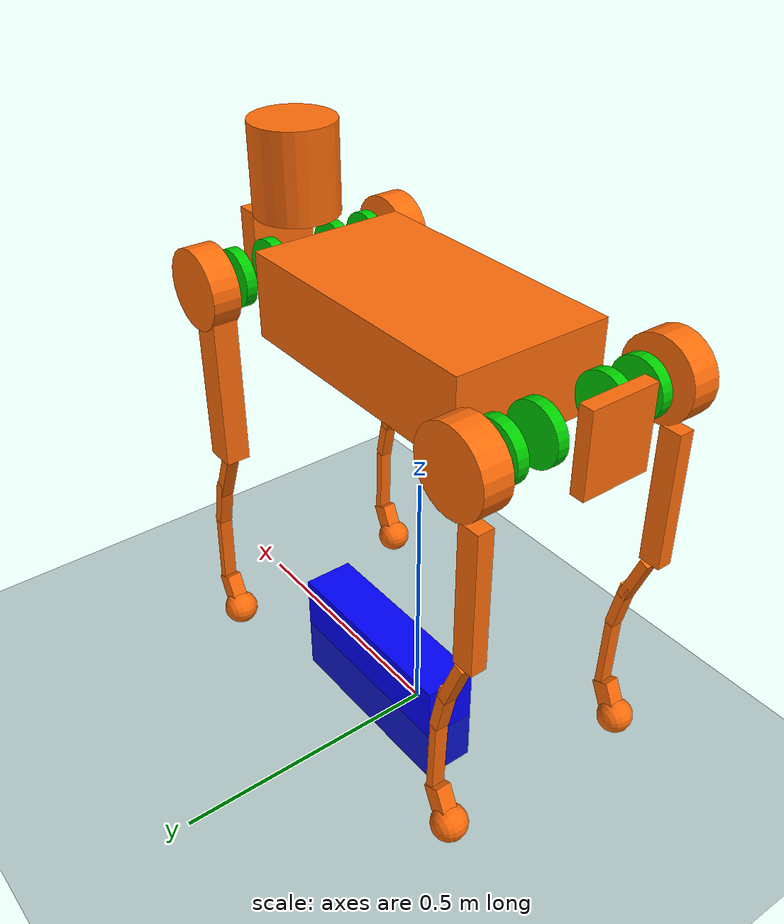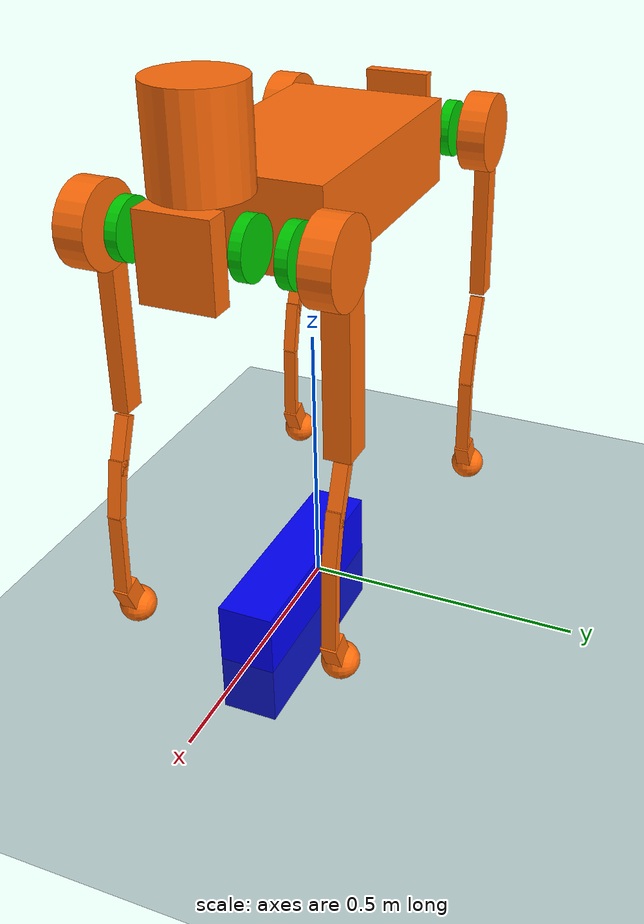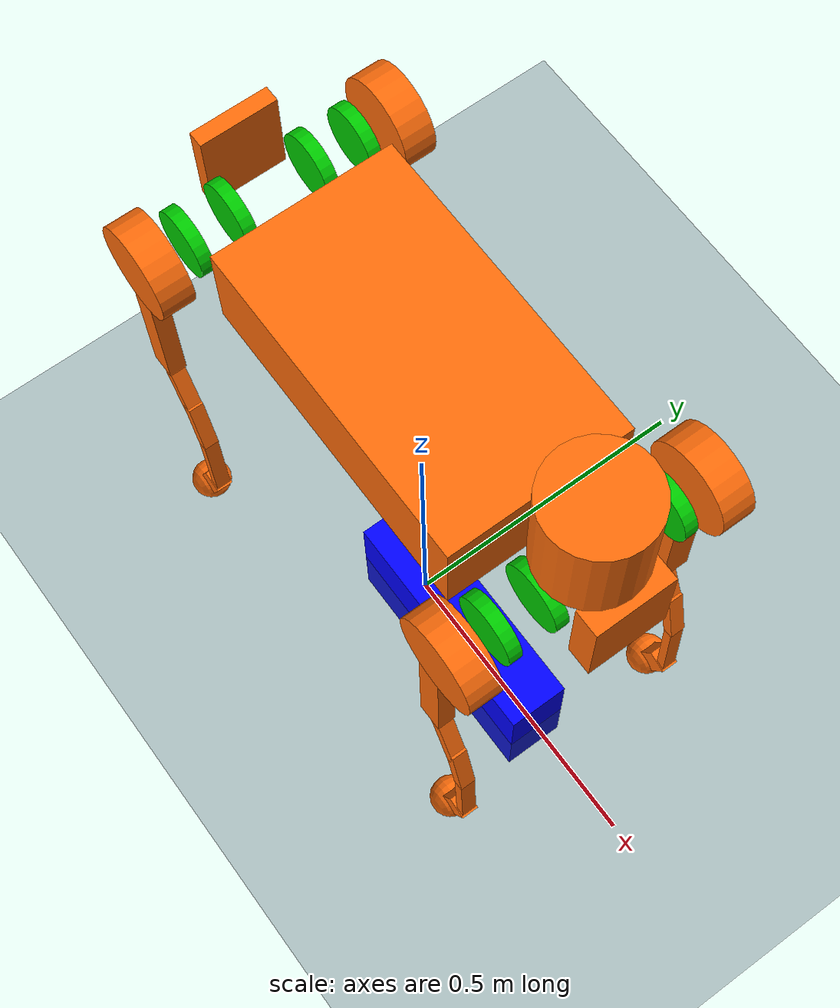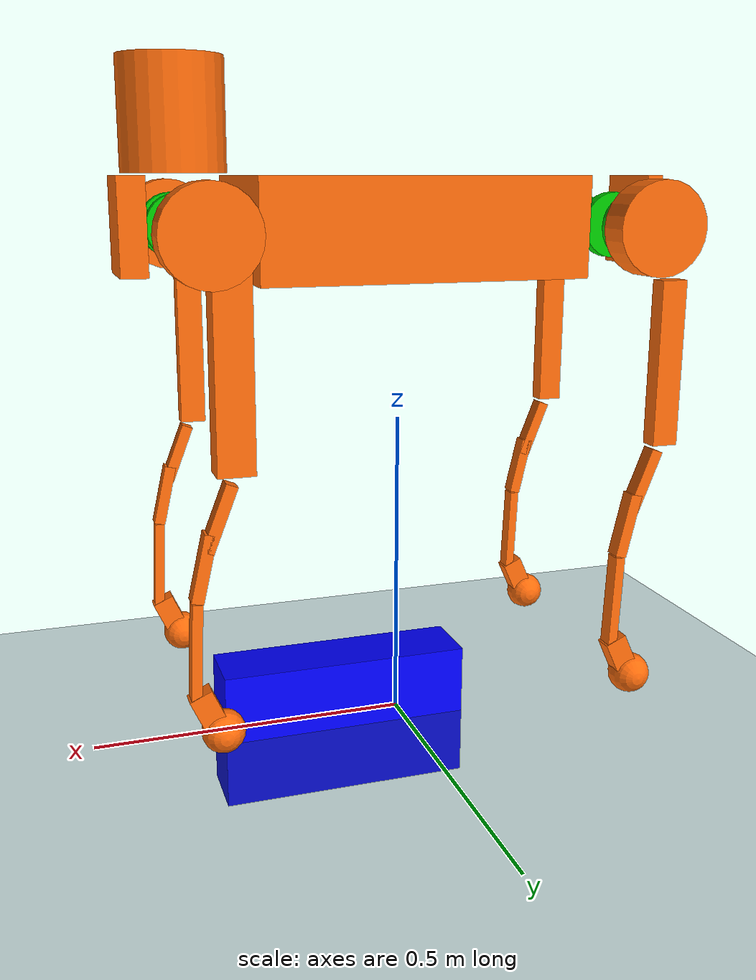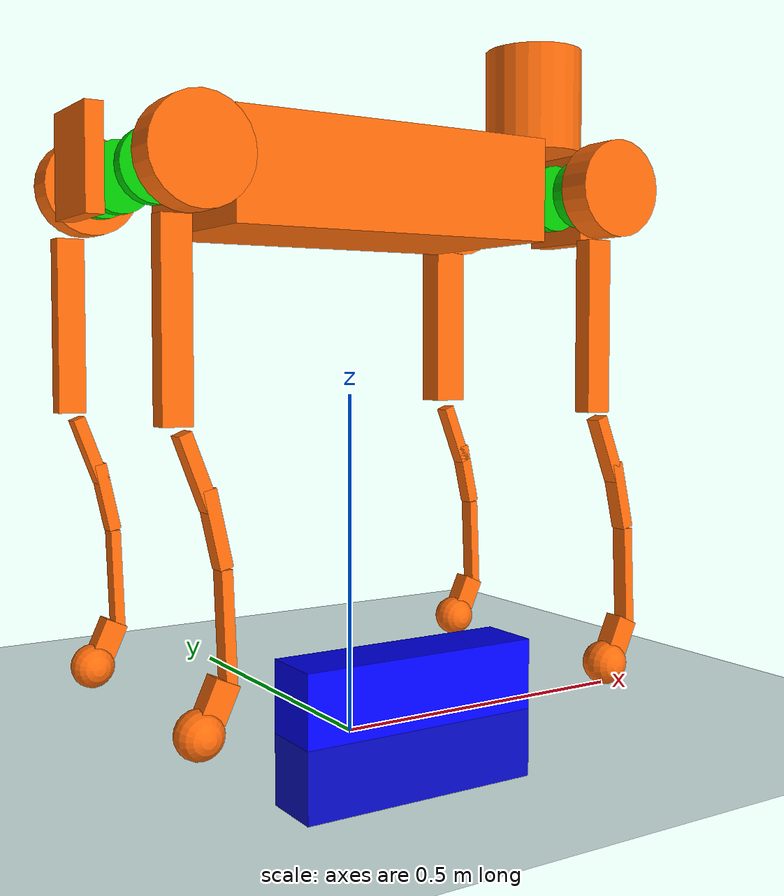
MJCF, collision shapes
<mujoco model="b2_description">
  <compiler angle="radian" meshdir="../assets/"/>

  <asset>
    <texture type="skybox" builtin="gradient" rgb1="0.3 0.5 0.7" rgb2="0 0 0" width="512" height="512" />
    <texture name="texplane" type="2d" builtin="checker" rgb1=".2 .3 .4" rgb2=".1 0.15 0.2" width="512" height="512" mark="cross" markrgb=".8 .8 .8" />
    <material name="matplane" reflectance="0.0" texture="texplane" texrepeat="1 1" texuniform="true" />

    <mesh name="base_link" file="base_link.obj"/>
    <mesh name="FR_hip" file="FR_hip.obj"/>
    <mesh name="FR_thigh" file="FR_thigh.obj"/>
    <mesh name="FR_calf" file="FR_calf.obj"/>
    <mesh name="FL_hip" file="FL_hip.obj"/>
    <mesh name="FL_thigh" file="FL_thigh.obj"/>
    <mesh name="FL_calf" file="FL_calf.obj"/>
    <mesh name="RR_hip" file="RR_hip.obj"/>
    <mesh name="RR_thigh" file="RR_thigh.obj"/>
    <mesh name="RR_calf" file="RR_calf.obj"/>
    <mesh name="RL_hip" file="RL_hip.obj"/>
    <mesh name="RL_thigh" file="RL_thigh.obj"/>
    <mesh name="RL_calf" file="RL_calf.obj"/>
  </asset>

  <worldbody>
    <light directional="true" diffuse=".4 .4 .4" specular="0.1 0.1 0.1" pos="0 0 5.0" dir="0 0 -1" castshadow="false" />
    <light directional="true" diffuse=".6 .6 .6" specular="0.2 0.2 0.2" pos="0 0 4" dir="0 0 -1" />
    <geom type="box" size="0.20 0.05 0.11" pos="0.1 0 0" rgba="0 0 1 0.3"/>
    <geom size="0.0005 0.0005 0.0005" type="box" contype="0" conaffinity="0" group="1" density="0"/>
    <geom name="floor" pos="0 0 0" size="200 200 1" type="plane" material="matplane" margin="0.001" condim="3" friction="1 0.005 0.0001" />
    <body name="trunk" pos="0 0 0.8">
      <site name="imu_sensor_site" pos="0 -0.02341 0.04927" />
      <inertial pos="0.000458 0.005261 0.000665" mass="35.86" fullinertia="0.27466 1.0618 1.1825 -0.000622 0.00315 -0.00139"/>
      <joint name="floating_base" type="free" limited="false" actuatorfrclimited="false"/>
      <geom contype="0" conaffinity="0" group="1" density="0" type="mesh" mesh="base_link" rgba="0.7 0.7 0.7 1"/>
      <geom group="2" rgba="1 0.423529 0.0392157 0.5" type="box" size="0.25 0.14 0.075"/>

      <body name="FR_hip" pos="0.3285 -0.072 0">
        <inertial pos="-0.009305 0.010228 0.000264" mass="2.673" fullinertia="0.0026431 0.0046728 0.0034208 -0.00019234 -6.76E-06 7.16E-06"/>
        <joint name="RF_HAA" pos="0 0 0" axis="1 0 0" range="-0.87 0.87" actuatorfrcrange="-200 200"/>
        <geom contype="0" conaffinity="0" group="1" density="0" type="mesh" mesh="FR_hip" rgba="0.7 0.7 0.7 1"/>
        <geom group="2" rgba="1 0.423529 0.0392157 0.5" pos="0 -0.12 0" euler="1.5707963267948966 0 0" type="cylinder" size="0.07 0.025"/>
        <body name="FR_thigh" pos="0 -0.11973 0">
          <inertial pos="-0.006279 0.032049 -0.057835" mass="4.536" fullinertia="0.06229908 0.06139927 0.008199745 -0.000877808 -0.003647464 -0.008353671"/>
          <joint name="RF_HFE" pos="0 0 0" axis="0 1 0" range="-0.94 4.69" actuatorfrcrange="-200 200"/>
          <geom contype="0" conaffinity="0" group="1" density="0" type="mesh" mesh="FR_thigh" rgba="0.7 0.7 0.7 1"/>
          <geom group="2" rgba="1 0.423529 0.0392157 0.5" pos="-0.03 0 -0.2" euler="0 1.57 0" type="box" size="0.125 0.014 0.02"/>
          <body name="FR_calf" pos="0 8.6986E-05 -0.35">
            <inertial pos="0.012422 0 -0.12499" mass="0.404" fullinertia="0.01143 0.011534 0.000331 0 0.000643 0"/>
            <joint name="RF_KFE" pos="0 0 0" axis="0 1 0" range="-2.82 -0.43" actuatorfrcrange="-320 320"/>
            <geom contype="0" conaffinity="0" group="1" density="0" type="mesh" mesh="FR_calf" rgba="0.7 0.7 0.7 1"/>
            <geom group="2" rgba="1 0.423529 0.0392157 0.5" pos="-0.002 0 -0.03" euler="0 1.2 0" type="box" size="0.05 0.01225 0.009"/>
            <geom group="2" rgba="1 0.423529 0.0392157 0.5" pos="0.022 0 -0.1" euler="0 1.35 0" type="box" size="0.05 0.01225 0.009"/>
            <geom group="2" rgba="1 0.423529 0.0392157 0.5" pos="0.036 0 -0.225" euler="0 1.53 0" type="box" size="0.075 0.01225 0.0075"/>
            <geom group="2" rgba="1 0.423529 0.0392157 0.5" pos="0.023 0 -0.31" euler="0 2 0" type="box" size="0.025 0.014 0.0175"/>
            <body name="RF_FOOT" pos="0 0 -0.35">
              <inertial pos="-0.006511 0 -0.010144" mass="0.126" fullinertia="3.8E-05 4.1E-05 4.2E-05 0 1.1E-05 0"/>
              <geom contype="0" conaffinity="0" group="1" density="0" type="sphere" size="0.03" rgba="0 0.8 0 1"/>
              <geom group="2" rgba="1 0.423529 0.0392157 0.5" euler="1.57 0 0" type="sphere" size="0.032" name="RF_FOOT_geom" friction="0.4 0.005 0.0001"/>
            </body>
          </body>
          <body name="FR_calf_rotor" pos="0 0.05788 0">
            <inertial pos="0.0 0.0 0.0" mass="0.2734" fullinertia="0.000144463 0.000144463 0.000263053 0.0 0.0 0.0"/>
            <geom contype="0" conaffinity="0" group="1" density="0" euler="1.5707963267948966 0 0" type="cylinder" size="0.05 0.01" rgba="0 0.8 0 1"/>
            <geom group="2" rgba="1 0.423529 0.0392157 0.5" euler="1.5707963267948966 0 0" type="cylinder" size="0.05 0.01"/>
          </body>
        </body>
        <body name="FR_thigh_rotor" pos="0 0.00798 0">
          <inertial pos="0.0 0.0 0.0" mass="0.2734" fullinertia="0.000144463 0.000144463 0.000263053 0.0 0.0 0.0"/>
          <geom contype="0" conaffinity="0" group="1" density="0" euler="1.5707963267948966 0 0" type="cylinder" size="0.05 0.01" rgba="0 0.8 0 1"/>
          <geom group="2" rgba="1 0.423529 0.0392157 0.5" euler="1.5707963267948966 0 0" type="cylinder" size="0.05 0.01"/>
        </body>
      </body>

      <body name="FL_hip" pos="0.3285 0.072 0">
        <inertial pos="-0.003841 -0.009068 0" mass="2.673" fullinertia="0.0033188 0.0048743 0.0037087 7.16E-05 -3.77E-07 4E-09"/>
        <joint name="LF_HAA" pos="0 0 0" axis="1 0 0" range="-0.87 0.87" actuatorfrcrange="-200 200"/>
        <geom contype="0" conaffinity="0" group="1" density="0" type="mesh" mesh="FL_hip" rgba="0.7 0.7 0.7 1"/>
        <geom group="2" rgba="1 0.423529 0.0392157 0.5" pos="0 0.12 0" euler="1.5707963267948966 0 0" type="cylinder" size="0.07 0.025"/>
        <body name="FL_thigh" pos="0 0.11973 0">
          <inertial pos="-0.006279 -0.032049 -0.057835" mass="4.536" fullinertia="0.062299 0.061399 0.0081997 0.00087781 -0.0036475 0.0083537"/>
          <joint name="LF_HFE" pos="0 0 0" axis="0 1 0" range="-0.94 4.69" actuatorfrcrange="-200 200"/>
          <geom contype="0" conaffinity="0" group="1" density="0" type="mesh" mesh="FL_thigh" rgba="0.7 0.7 0.7 1"/>
          <geom group="2" rgba="1 0.423529 0.0392157 0.5" pos="-0.025 0 -0.16" euler="0 1.57 0" type="box" size="0.16 0.02225 0.027"/>
          <body name="FL_calf" pos="0 -8.6984E-05 -0.35">
            <inertial pos="0.012422 0 -0.12499" mass="0.404" fullinertia="0.01143 0.011534 0.000331 0 0.000643 0"/>
            <joint name="LF_KFE" pos="0 0 0" axis="0 1 0" range="-2.82 -0.43" actuatorfrcrange="-320 320"/>
            <geom contype="0" conaffinity="0" group="1" density="0" type="mesh" mesh="FL_calf" rgba="0.7 0.7 0.7 1"/>
            <geom group="2" rgba="1 0.423529 0.0392157 0.5" pos="-0.002 0 -0.03" euler="0 1.2 0" type="box" size="0.05 0.01225 0.009"/>
            <geom group="2" rgba="1 0.423529 0.0392157 0.5" pos="0.022 0 -0.1" euler="0 1.35 0" type="box" size="0.05 0.01225 0.009"/>
            <geom group="2" rgba="1 0.423529 0.0392157 0.5" pos="0.036 0 -0.225" euler="0 1.53 0" type="box" size="0.075 0.01225 0.0075"/>
            <geom group="2" rgba="1 0.423529 0.0392157 0.5" pos="0.023 0 -0.31" euler="0 2 0" type="box" size="0.025 0.014 0.0175"/>
            <body name="LF_FOOT" pos="0 0 -0.35">
              <inertial pos="-0.006511 0 -0.010144" mass="0.126" fullinertia="3.8E-05 4.1E-05 4.2E-05 0 1.1E-05 0"/>
              <geom contype="0" conaffinity="0" group="1" density="0" type="sphere" size="0.03" rgba="0 0.8 0 1"/>
              <geom group="2" rgba="1 0.423529 0.0392157 0.5" euler="1.57 0 0" type="sphere" size="0.032" name="LF_FOOT_geom" friction="0.4 0.005 0.0001"/>
            </body>
          </body>
          <body name="FL_calf_rotor" pos="0 -0.05788 0">
            <inertial pos="0.0 0.0 0.0" mass="0.2734" fullinertia="0.000144463 0.000144463 0.000263053 0.0 0.0 0.0"/>
            <geom contype="0" conaffinity="0" group="1" density="0" euler="1.5707963267948966 0 0" type="cylinder" size="0.05 0.01" rgba="0 0.8 0 1"/>
            <geom group="2" rgba="1 0.423529 0.0392157 0.5" euler="1.5707963267948966 0 0" type="cylinder" size="0.05 0.01"/>
          </body>
        </body>
        <body name="FL_thigh_rotor" pos="0 -0.00798 0">
          <inertial pos="0.0 0.0 0.0" mass="0.2734" fullinertia="0.000144463 0.000144463 0.000263053 0.0 0.0 0.0"/>
          <geom contype="0" conaffinity="0" group="1" density="0" euler="1.5707963267948966 0 0" type="cylinder" size="0.05 0.01" rgba="0 0.8 0 1"/>
          <geom group="2" rgba="1 0.423529 0.0392157 0.5" euler="1.5707963267948966 0 0" type="cylinder" size="0.05 0.01"/>
        </body>
      </body>

      <body name="RR_hip" pos="-0.3285 -0.072 0">
        <inertial pos="0.003841 0.009068 0" mass="2.673" fullinertia="0.0033188 0.0048743 0.0037087 7.16E-05 3.77E-07 -4E-09"/>
        <joint name="RH_HAA" pos="0 0 0" axis="1 0 0" range="-0.87 0.87" actuatorfrcrange="-200 200"/>
        <geom contype="0" conaffinity="0" group="1" density="0" type="mesh" mesh="RR_hip" rgba="0.7 0.7 0.7 1"/>
        <geom group="2" rgba="1 0.423529 0.0392157 0.5" pos="0 -0.12 0" euler="1.5707963267948966 0 0" type="cylinder" size="0.07 0.025"/>
        <body name="RR_thigh" pos="0 -0.11973 0">
          <inertial pos="-0.006279 0.032049 -0.057835" mass="4.536" fullinertia="0.062299 0.061399 0.0081997 -0.00087781 -0.0036475 -0.0083537"/>
          <joint name="RH_HFE" pos="0 0 0" axis="0 1 0" range="-0.94 4.69" actuatorfrcrange="-200 200"/>
          <geom contype="0" conaffinity="0" group="1" density="0" type="mesh" mesh="RR_thigh" rgba="0.7 0.7 0.7 1"/>
          <geom group="2" rgba="1 0.423529 0.0392157 0.5" pos="-0.03 0 -0.2" euler="0 1.57 0" type="box" size="0.125 0.014 0.02"/>
          <body name="RR_calf" pos="0 8.6986E-05 -0.35">
            <inertial pos="0.012422 0 -0.12499" mass="0.404" fullinertia="0.01143 0.011534 0.000331 0 0.000643 0"/>
            <joint name="RH_KFE" pos="0 0 0" axis="0 1 0" range="-2.82 -0.43" actuatorfrcrange="-320 320"/>
            <geom contype="0" conaffinity="0" group="1" density="0" type="mesh" mesh="RR_calf" rgba="0.7 0.7 0.7 1"/>
            <geom group="2" rgba="1 0.423529 0.0392157 0.5" pos="-0.002 0 -0.03" euler="0 1.2 0" type="box" size="0.05 0.01225 0.009"/>
            <geom group="2" rgba="1 0.423529 0.0392157 0.5" pos="0.022 0 -0.1" euler="0 1.35 0" type="box" size="0.05 0.01225 0.009"/>
            <geom group="2" rgba="1 0.423529 0.0392157 0.5" pos="0.036 0 -0.225" euler="0 1.53 0" type="box" size="0.075 0.01225 0.0075"/>
            <geom group="2" rgba="1 0.423529 0.0392157 0.5" pos="0.023 0 -0.31" euler="0 2 0" type="box" size="0.025 0.014 0.0175"/>
            <body name="RH_FOOT" pos="0 -8.6984E-05 -0.35">
              <inertial pos="-0.006511 0 -0.010144" mass="0.126" fullinertia="3.8E-05 4.1E-05 4.2E-05 0 1.1E-05 0"/>
              <geom contype="0" conaffinity="0" group="1" density="0" type="sphere" size="0.03" rgba="0 0.8 0 1"/>
              <geom group="2" rgba="1 0.423529 0.0392157 0.5" euler="1.57 0 0" type="sphere" size="0.032" name="RH_FOOT_geom" friction="0.4 0.005 0.0001"/>
            </body>
          </body>
          <body name="RR_calf_rotor" pos="0 0.05788 0">
            <inertial pos="0.0 0.0 0.0" mass="0.2734" fullinertia="0.000144463 0.000144463 0.000263053 0.0 0.0 0.0"/>
            <geom contype="0" conaffinity="0" group="1" density="0" euler="1.5707963267948966 0 0" type="cylinder" size="0.05 0.01" rgba="0 0.8 0 1"/>
            <geom group="2" rgba="1 0.423529 0.0392157 0.5" euler="1.5707963267948966 0 0" type="cylinder" size="0.05 0.01"/>
          </body>
        </body>
        <body name="RR_thigh_rotor" pos="0 0.00798 0">
          <inertial pos="0.0 0.0 0.0" mass="0.2734" fullinertia="0.000144463 0.000144463 0.000263053 0.0 0.0 0.0"/>
          <geom contype="0" conaffinity="0" group="1" density="0" euler="1.5707963267948966 0 0" type="cylinder" size="0.05 0.01" rgba="0 0.8 0 1"/>
          <geom group="2" rgba="1 0.423529 0.0392157 0.5" euler="1.5707963267948966 0 0" type="cylinder" size="0.05 0.01"/>
        </body>
      </body>

      <body name="RL_hip" pos="-0.3285 0.072 0">
        <inertial pos="0.009305 -0.010228 0.000264" mass="2.673" fullinertia="0.0026431 0.0046728 0.0034208 -0.00019234 6.76E-06 -7.16E-06"/>
        <joint name="LH_HAA" pos="0 0 0" axis="1 0 0" range="-0.87 0.87" actuatorfrcrange="-200 200"/>
        <geom contype="0" conaffinity="0" group="1" density="0" type="mesh" mesh="RL_hip" rgba="0.7 0.7 0.7 1"/>
        <geom group="2" rgba="1 0.423529 0.0392157 0.5" pos="0 0.12 0" euler="1.5707963267948966 0 0" type="cylinder" size="0.07 0.025"/>
        <body name="RL_thigh" pos="0 0.11973 0">
          <inertial pos="-0.006279 -0.032049 -0.057835" mass="4.536" fullinertia="0.06229908 0.06139927 0.008199745 0.000877808 -0.003647464 0.008353671"/>
          <joint name="LH_HFE" pos="0 0 0" axis="0 1 0" range="-0.94 4.69" actuatorfrcrange="-200 200"/>
          <geom contype="0" conaffinity="0" group="1" density="0" type="mesh" mesh="RL_thigh" rgba="0.7 0.7 0.7 1"/>
          <geom group="2" rgba="1 0.423529 0.0392157 0.5" pos="-0.03 0 -0.2" euler="0 1.57 0" type="box" size="0.125 0.014 0.02"/>
          <body name="RL_calf" pos="0 -8.6984E-05 -0.35">
            <inertial pos="0.012422 0 -0.12499" mass="0.404" fullinertia="0.01143 0.011534 0.000331 0 0.000643 0"/>
            <joint name="LH_KFE" pos="0 0 0" axis="0 1 0" range="-2.82 -0.43" actuatorfrcrange="-320 320"/>
            <geom contype="0" conaffinity="0" group="1" density="0" type="mesh" mesh="RL_calf" rgba="0.7 0.7 0.7 1"/>
            <geom group="2" rgba="1 0.423529 0.0392157 0.5" pos="-0.002 0 -0.03" euler="0 1.2 0" type="box" size="0.05 0.01225 0.009"/>
            <geom group="2" rgba="1 0.423529 0.0392157 0.5" pos="0.022 0 -0.1" euler="0 1.35 0" type="box" size="0.05 0.01225 0.009"/>
            <geom group="2" rgba="1 0.423529 0.0392157 0.5" pos="0.036 0 -0.225" euler="0 1.53 0" type="box" size="0.075 0.01225 0.0075"/>
            <geom group="2" rgba="1 0.423529 0.0392157 0.5" pos="0.023 0 -0.31" euler="0 2 0" type="box" size="0.025 0.014 0.0175"/>
            <body name="LH_FOOT" pos="0 0 -0.35">
              <inertial pos="-0.006511 0 -0.010144" mass="0.126" fullinertia="3.8E-05 4.1E-05 4.2E-05 0 1.1E-05 0"/>
              <geom contype="0" conaffinity="0" group="1" density="0" type="sphere" size="0.03" rgba="0 0.8 0 1"/>
              <geom group="2" rgba="1 0.423529 0.0392157 0.5" euler="1.57 0 0" type="sphere" size="0.032" name="LH_FOOT_geom" friction="0.4 0.005 0.0001"/>
            </body>
          </body>
          <body name="RL_calf_rotor" pos="0 -0.05788 0">
            <inertial pos="0.0 0.0 0.0" mass="0.2734" fullinertia="0.000144463 0.000144463 0.000263053 0.0 0.0 0.0"/>
            <geom contype="0" conaffinity="0" group="1" density="0" euler="1.5707963267948966 0 0" type="cylinder" size="0.05 0.01" rgba="0 0.8 0 1"/>
            <geom group="2" rgba="1 0.423529 0.0392157 0.5" euler="1.5707963267948966 0 0" type="cylinder" size="0.05 0.01"/>
          </body>
        </body>
        <body name="RL_thigh_rotor" pos="0 -0.00798 0">
          <inertial pos="0.0 0.0 0.0" mass="0.2734" fullinertia="0.000144463 0.000144463 0.000263053 0.0 0.0 0.0"/>
          <geom contype="0" conaffinity="0" group="1" density="0" euler="1.5707963267948966 0 0" type="cylinder" size="0.05 0.01" rgba="0 0.8 0 1"/>
          <geom group="2" rgba="1 0.423529 0.0392157 0.5" euler="1.5707963267948966 0 0" type="cylinder" size="0.05 0.01"/>
        </body>
      </body>

      <body name="FL_hip_rotor" pos="0.20205 0.072 0">
        <inertial pos="0.0 0.0 0.0" mass="0.2734" fullinertia="0.000144463 0.000144463 0.000263053 0.0 0.0 0.0"/>
        <geom contype="0" conaffinity="0" group="1" density="0" euler="0 1.5707963267948966 0" type="cylinder" size="0.05 0.01" rgba="0 0.8 0 1"/>
        <geom group="2" rgba="1 0.423529 0.0392157 0.5" euler="0 1.5707963267948966 0" type="cylinder" size="0.05 0.01"/>
      </body>
      <body name="FR_hip_rotor" pos="0.20205 -0.072 0">
        <inertial pos="0.0 0.0 0.0" mass="0.2734" fullinertia="0.000144463 0.000144463 0.000263053 0.0 0.0 0.0"/>
        <geom contype="0" conaffinity="0" group="1" density="0" euler="0 1.5707963267948966 0" type="cylinder" size="0.05 0.01" rgba="0 0.8 0 1"/>
        <geom group="2" rgba="1 0.423529 0.0392157 0.5" euler="0 1.5707963267948966 0" type="cylinder" size="0.05 0.01"/>
      </body>
      <body name="RL_hip_rotor" pos="-0.20205 0.072 0">
        <inertial pos="0.0 0.0 0.0" mass="0.2734" fullinertia="0.000144463 0.000144463 0.000263053 0.0 0.0 0.0"/>
        <geom contype="0" conaffinity="0" group="1" density="0" euler="0 1.5707963267948966 0" type="cylinder" size="0.05 0.01" rgba="0 0.8 0 1"/>
        <geom group="2" rgba="1 0.423529 0.0392157 0.5" euler="0 1.5707963267948966 0" type="cylinder" size="0.05 0.01"/>
      </body>
      <body name="RR_hip_rotor" pos="-0.20205 -0.072 0">
        <inertial pos="0.0 0.0 0.0" mass="0.2734" fullinertia="0.000144463 0.000144463 0.000263053 0.0 0.0 0.0"/>
        <geom contype="0" conaffinity="0" group="1" density="0" euler="0 1.5707963267948966 0" type="cylinder" size="0.05 0.01" rgba="0 0.8 0 1"/>
        <geom group="2" rgba="1 0.423529 0.0392157 0.5" euler="0 1.5707963267948966 0" type="cylinder" size="0.05 0.01"/>
      </body>

      <body name="f_dc_link" pos="0.41251 0.024997 0.04765" euler="-2.3562 0 -1.5708">
        <inertial pos="3.47E-18 0 5.55E-17" mass="4.19E-15" diaginertia="1.68E-27 1.68E-27 1.68E-27"/>
      </body>
      <body name="f_oc_link" pos="0.39079 0 -0.013433" euler="-1.5708 0 -1.5708">
        <inertial pos="-3.39E-15 1.46E-16 -6.11E-16" mass="4.19E-15" diaginertia="1.68E-27 1.68E-27 1.68E-27"/>
      </body>
      <body name="head_Link">
        <inertial pos="0.33989 -0.000168 0.12029" mass="3.6885" fullinertia="0.026455 0.029221 0.010918 3.15E-05 0.00166 -3.27E-05"/>
        <geom group="2" rgba="1 0.423529 0.0392157 0.5" pos="0.41 0 0.005" type="box" size="0.02 0.06 0.07"/>
      </body>
      <body name="imu_link" pos="0 -0.02341 0.04927">
        <inertial pos="-2.02E-17 1.73E-17 -1.39E-17" mass="4.19E-15" diaginertia="1.68E-27 1.68E-27 1.68E-27"/>
      </body>
      <body name="lidar_link" pos="0.34218 0 0.17851">
        <inertial pos="0.34218 0 0.17851" mass="4.19E-15" diaginertia="1.68E-27 1.68E-27 1.68E-27"/>
        <geom group="2" rgba="1 0.423529 0.0392157 0.5" pos="0 0 -0.02" type="cylinder" size="0.076 0.08"/>
      </body>
      <body name="r_dc_link" pos="-0.4081 -0.025 0.024861" euler="-2.3557 0 1.5708">
        <inertial pos="-7.46E-16 -3.33E-16 -1.11E-15" mass="4.19E-15" diaginertia="1.68E-27 1.68E-27 1.68E-27"/>
      </body>
      <body name="r_oc_link" pos="-0.38451 0 -0.023249" euler="-1.5708 0 1.5708">
        <inertial pos="-0.39143 1.52E-07 -0.011961" mass="4.19E-12" diaginertia="1.68E-22 1.68E-22 1.68E-22"/>
      </body>
      <body name="tail_link">
        <inertial pos="-0.37448 0.000488 0.006495" mass="0.795" fullinertia="0.0028118 0.0047506 0.0029154 1.95E-05 -7.87E-06 -1.57E-05"/>
        <geom group="2" rgba="1 0.423529 0.0392157 0.5" pos="-0.405 0 0.005" type="box" size="0.0125 0.06 0.07"/>
      </body>
    </body>
  </worldbody>

  <sensor>
    <framequat name="imu_quat" objtype="site" objname="imu_sensor_site" />
    <gyro name="imu_angvel" site="imu_sensor_site" />
    <accelerometer name="imu_linacc" site="imu_sensor_site" />

    <jointpos joint="LF_HAA" />
    <jointpos joint="LF_HFE" />
    <jointpos joint="LF_KFE" />
    <jointpos joint="LH_HAA" />
    <jointpos joint="LH_HFE" />
    <jointpos joint="LH_KFE" />
    <jointpos joint="RF_HAA" />
    <jointpos joint="RF_HFE" />
    <jointpos joint="RF_KFE" />
    <jointpos joint="RH_HAA" />
    <jointpos joint="RH_HFE" />
    <jointpos joint="RH_KFE" />

    <jointvel joint="LF_HAA" />
    <jointvel joint="LF_HFE" />
    <jointvel joint="LF_KFE" />
    <jointvel joint="LH_HAA" />
    <jointvel joint="LH_HFE" />
    <jointvel joint="LH_KFE" />
    <jointvel joint="RF_HAA" />
    <jointvel joint="RF_HFE" />
    <jointvel joint="RF_KFE" />
    <jointvel joint="RH_HAA" />
    <jointvel joint="RH_HFE" />
    <jointvel joint="RH_KFE" />

    <framequat name="base_quat" objtype="site" objname="imu_sensor_site" />
    <framepos name="base_pose" objtype="site" objname="imu_sensor_site" />
    <frameangvel name="base_angvel" objtype="site" objname="imu_sensor_site" />
    <framelinvel name="base_linvel" objtype="site" objname="imu_sensor_site" />

  </sensor>

  <actuator>
    <motor name="LF_HAA" joint="LF_HAA" gear="1" ctrlrange="-200 200" ctrllimited="true"/>
    <motor name="LF_HFE" joint="LF_HFE" gear="1" ctrlrange="-200 200" ctrllimited="true"/>
    <motor name="LF_KFE" joint="LF_KFE" gear="1" ctrlrange="-320 320" ctrllimited="true"/>
    <motor name="LH_HAA" joint="LH_HAA" gear="1" ctrlrange="-200 200" ctrllimited="true"/>
    <motor name="LH_HFE" joint="LH_HFE" gear="1" ctrlrange="-200 200" ctrllimited="true"/>
    <motor name="LH_KFE" joint="LH_KFE" gear="1" ctrlrange="-320 320" ctrllimited="true"/>
    <motor name="RF_HAA" joint="RF_HAA" gear="1" ctrlrange="-200 200" ctrllimited="true"/>
    <motor name="RF_HFE" joint="RF_HFE" gear="1" ctrlrange="-200 200" ctrllimited="true"/>
    <motor name="RF_KFE" joint="RF_KFE" gear="1" ctrlrange="-320 320" ctrllimited="true"/>
    <motor name="RH_HAA" joint="RH_HAA" gear="1" ctrlrange="-200 200" ctrllimited="true"/>
    <motor name="RH_HFE" joint="RH_HFE" gear="1" ctrlrange="-200 200" ctrllimited="true"/>
    <motor name="RH_KFE" joint="RH_KFE" gear="1" ctrlrange="-320 320" ctrllimited="true"/>
  </actuator>

</mujoco>
